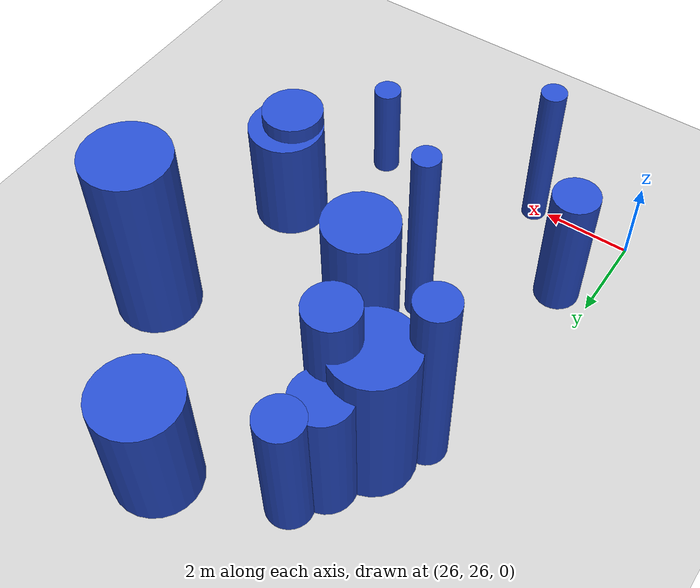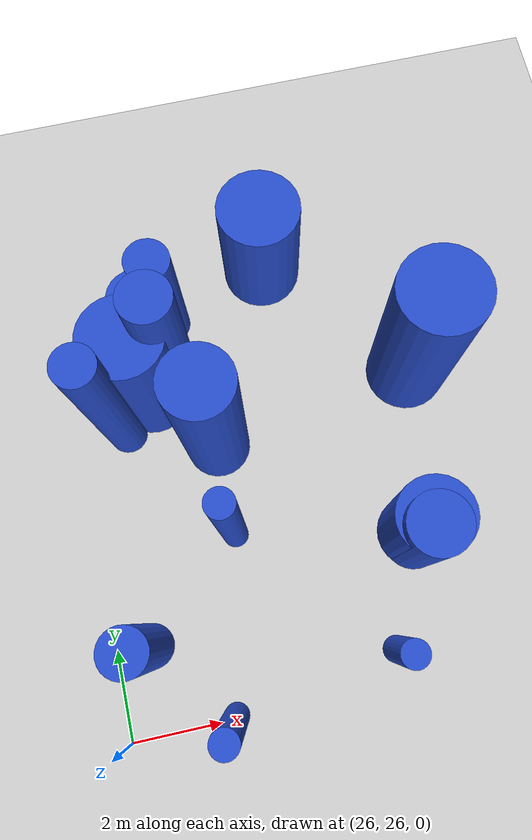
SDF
<sdf version="1.6">
 <world name="default">
  <model name="ground_plane">
   <static>1</static>
   <link name="link">
    <collision name="collision">
     <geometry><plane><normal>0 0 1</normal><size>100 100</size></plane></geometry>
     <surface><friction><ode><mu>100</mu><mu2>50</mu2></ode></friction></surface>
    </collision>
    <visual name="visual">
     <cast_shadows>0</cast_shadows>
     <geometry><plane><normal>0 0 1</normal><size>100 100</size></plane></geometry>
     <material>
      <script><uri>file://media/materials/scripts/gazebo.material</uri><name>Gazebo/Grey</name></script>
     </material>
    </visual>
   </link>
  </model>
  <model name="16">
   <static>0</static>
   <link name="link">
    <inertial>
     <mass>2</mass>
     <inertia><ixx>1.94796</ixx><ixy>0</ixy><ixz>0</ixz><iyy>1.94796</iyy><iyz>0</iyz><izz>0.38834</izz></inertia>
    </inertial>
    <collision name="collision">
     <geometry><cylinder><length>3.24388</length><radius>0.623169</radius></cylinder></geometry>
     <surface><contact><collide_without_contact>1</collide_without_contact></contact></surface>
    </collision>
    <visual name="visual">
     <geometry><cylinder><length>3.24388</length><radius>0.623169</radius></cylinder></geometry>
     <material>
      <script><uri>file://media/materials/scripts/gazebo.material</uri><name>Gazebo/Blue</name></script>
     </material>
    </visual>
    <gravity>0</gravity>
   </link>
   <pose>28.2373 34.7081 1.62194 0 -0 0</pose>
  </model>
  <model name="21">
   <static>0</static>
   <link name="link">
    <inertial>
     <mass>2</mass>
     <inertia><ixx>4.07181</ixx><ixy>0</ixy><ixz>0</ixz><iyy>4.07181</iyy><iyz>0</iyz><izz>0.543778</izz></inertia>
    </inertial>
    <collision name="collision">
     <geometry><cylinder><length>4.77488</length><radius>0.737413</radius></cylinder></geometry>
     <surface><contact><collide_without_contact>1</collide_without_contact></contact></surface>
    </collision>
    <visual name="visual">
     <geometry><cylinder><length>4.77488</length><radius>0.737413</radius></cylinder></geometry>
     <material>
      <script><uri>file://media/materials/scripts/gazebo.material</uri><name>Gazebo/Blue</name></script>
     </material>
    </visual>
    <gravity>0</gravity>
   </link>
   <pose>29.1484 32.1402 2.38744 0 -0 0</pose>
  </model>
  <model name="44">
   <static>0</static>
   <link name="link">
    <inertial>
     <mass>2</mass>
     <inertia><ixx>1.7448</ixx><ixy>0</ixy><ixz>0</ixz><iyy>1.7448</iyy><iyz>0</iyz><izz>0.25816</izz></inertia>
    </inertial>
    <collision name="collision">
     <geometry><cylinder><length>3.11357</length><radius>0.508094</radius></cylinder></geometry>
     <surface><contact><collide_without_contact>1</collide_without_contact></contact></surface>
    </collision>
    <visual name="visual">
     <geometry><cylinder><length>3.11357</length><radius>0.508094</radius></cylinder></geometry>
     <material>
      <script><uri>file://media/materials/scripts/gazebo.material</uri><name>Gazebo/Blue</name></script>
     </material>
    </visual>
    <gravity>0</gravity>
   </link>
   <pose>26.7685 27.9284 1.55679 0 -0 0</pose>
  </model>
  <model name="58">
   <static>0</static>
   <link name="link">
    <inertial>
     <mass>2</mass>
     <inertia><ixx>2.80734</ixx><ixy>0</ixy><ixz>0</ixz><iyy>2.80734</iyy><iyz>0</iyz><izz>0.790535</izz></inertia>
    </inertial>
    <collision name="collision">
     <geometry><cylinder><length>3.80426</length><radius>0.889121</radius></cylinder></geometry>
     <surface><contact><collide_without_contact>1</collide_without_contact></contact></surface>
    </collision>
    <visual name="visual">
     <geometry><cylinder><length>3.80426</length><radius>0.889121</radius></cylinder></geometry>
     <material>
      <script><uri>file://media/materials/scripts/gazebo.material</uri><name>Gazebo/Blue</name></script>
     </material>
    </visual>
    <gravity>0</gravity>
   </link>
   <pose>27.8441 33.6819 1.90213 0 -0 0</pose>
  </model>
  <model name="78">
   <static>0</static>
   <link name="link">
    <inertial>
     <mass>2</mass>
     <inertia><ixx>3.89358</ixx><ixy>0</ixy><ixz>0</ixz><iyy>3.89358</iyy><iyz>0</iyz><izz>0.194985</izz></inertia>
    </inertial>
    <collision name="collision">
     <geometry><cylinder><length>4.77247</length><radius>0.441571</radius></cylinder></geometry>
     <surface><contact><collide_without_contact>1</collide_without_contact></contact></surface>
    </collision>
    <visual name="visual">
     <geometry><cylinder><length>4.77247</length><radius>0.441571</radius></cylinder></geometry>
     <material>
      <script><uri>file://media/materials/scripts/gazebo.material</uri><name>Gazebo/Blue</name></script>
     </material>
    </visual>
    <gravity>0</gravity>
   </link>
   <pose>27.1001 32.8841 2.38624 0 -0 0</pose>
  </model>
  <model name="91">
   <static>0</static>
   <link name="link">
    <inertial>
     <mass>2</mass>
     <inertia><ixx>1.88416</ixx><ixy>0</ixy><ixz>0</ixz><iyy>1.88416</iyy><iyz>0</iyz><izz>0.248682</izz></inertia>
    </inertial>
    <collision name="collision">
     <geometry><cylinder><length>3.24945</length><radius>0.498681</radius></cylinder></geometry>
     <surface><contact><collide_without_contact>1</collide_without_contact></contact></surface>
    </collision>
    <visual name="visual">
     <geometry><cylinder><length>3.24945</length><radius>0.498681</radius></cylinder></geometry>
     <material>
      <script><uri>file://media/materials/scripts/gazebo.material</uri><name>Gazebo/Blue</name></script>
     </material>
    </visual>
    <gravity>0</gravity>
   </link>
   <pose>28.5794 35.4647 1.62472 0 -0 0</pose>
  </model>
  <model name="103">
   <static>0</static>
   <link name="link">
    <inertial>
     <mass>2</mass>
     <inertia><ixx>3.8726</ixx><ixy>0</ixy><ixz>0</ixz><iyy>3.8726</iyy><iyz>0</iyz><izz>0.29541</izz></inertia>
    </inertial>
    <collision name="collision">
     <geometry><cylinder><length>4.72751</length><radius>0.543517</radius></cylinder></geometry>
     <surface><contact><collide_without_contact>1</collide_without_contact></contact></surface>
    </collision>
    <visual name="visual">
     <geometry><cylinder><length>4.72751</length><radius>0.543517</radius></cylinder></geometry>
     <material>
      <script><uri>file://media/materials/scripts/gazebo.material</uri><name>Gazebo/Blue</name></script>
     </material>
    </visual>
    <gravity>0</gravity>
   </link>
   <pose>28.5316 33.9189 2.36376 0 -0 0</pose>
  </model>
  <model name="133">
   <static>0</static>
   <link name="link">
    <inertial>
     <mass>2</mass>
     <inertia><ixx>1.49924</ixx><ixy>0</ixy><ixz>0</ixz><iyy>1.49924</iyy><iyz>0</iyz><izz>0.70664</izz></inertia>
    </inertial>
    <collision name="collision">
     <geometry><cylinder><length>2.62212</length><radius>0.840619</radius></cylinder></geometry>
     <surface><contact><collide_without_contact>1</collide_without_contact></contact></surface>
    </collision>
    <visual name="visual">
     <geometry><cylinder><length>2.62212</length><radius>0.840619</radius></cylinder></geometry>
     <material>
      <script><uri>file://media/materials/scripts/gazebo.material</uri><name>Gazebo/Blue</name></script>
     </material>
    </visual>
    <gravity>0</gravity>
   </link>
   <pose>33.1535 29.158 1.31106 0 -0 0</pose>
  </model>
  <model name="135">
   <static>0</static>
   <link name="link">
    <inertial>
     <mass>2</mass>
     <inertia>
      <ixx>0.964582</ixx>
      <ixy>0</ixy>
      <ixz>0</ixz>
      <iyy>0.964582</iyy>
      <iyz>0</iyz>
      <izz>0.0928418</izz>
     </inertia>
    </inertial>
    <collision name="collision">
     <geometry><cylinder><length>2.34712</length><radius>0.304699</radius></cylinder></geometry>
     <surface><contact><collide_without_contact>1</collide_without_contact></contact></surface>
    </collision>
    <visual name="visual">
     <geometry><cylinder><length>2.34712</length><radius>0.304699</radius></cylinder></geometry>
     <material>
      <script><uri>file://media/materials/scripts/gazebo.material</uri><name>Gazebo/Blue</name></script>
     </material>
    </visual>
    <gravity>0</gravity>
   </link>
   <pose>32.105 26.6815 1.17356 0 -0 0</pose>
  </model>
  <model name="162">
   <static>0</static>
   <link name="link">
    <inertial>
     <mass>2</mass>
     <inertia><ixx>1.81525</ixx><ixy>0</ixy><ixz>0</ixz><iyy>1.81525</iyy><iyz>0</iyz><izz>0.856891</izz></inertia>
    </inertial>
    <collision name="collision">
     <geometry><cylinder><length>2.88458</length><radius>0.925684</radius></cylinder></geometry>
     <surface><contact><collide_without_contact>1</collide_without_contact></contact></surface>
    </collision>
    <visual name="visual">
     <geometry><cylinder><length>2.88458</length><radius>0.925684</radius></cylinder></geometry>
     <material>
      <script><uri>file://media/materials/scripts/gazebo.material</uri><name>Gazebo/Blue</name></script>
     </material>
    </visual>
    <gravity>0</gravity>
   </link>
   <pose>31.1056 36.3687 1.44229 0 -0 0</pose>
  </model>
  <model name="192">
   <static>0</static>
   <link name="link">
    <inertial>
     <mass>2</mass>
     <inertia><ixx>2.07774</ixx><ixy>0</ixy><ixz>0</ixz><iyy>2.07774</iyy><iyz>0</iyz><izz>0.131573</izz></inertia>
    </inertial>
    <collision name="collision">
     <geometry><cylinder><length>3.47444</length><radius>0.36273</radius></cylinder></geometry>
     <surface><contact><collide_without_contact>1</collide_without_contact></contact></surface>
    </collision>
    <visual name="visual">
     <geometry><cylinder><length>3.47444</length><radius>0.36273</radius></cylinder></geometry>
     <material>
      <script><uri>file://media/materials/scripts/gazebo.material</uri><name>Gazebo/Blue</name></script>
     </material>
    </visual>
    <gravity>0</gravity>
   </link>
   <pose>34.6264 33.0363 1.73722 0 -0 0</pose>
  </model>
  <model name="221">
   <static>0</static>
   <link name="link">
    <inertial>
     <mass>2</mass>
     <inertia>
      <ixx>3.59833</ixx>
      <ixy>0</ixy>
      <ixz>0</ixz>
      <iyy>3.59833</iyy>
      <iyz>0</iyz>
      <izz>0.0862333</izz>
     </inertia>
    </inertial>
    <collision name="collision">
     <geometry><cylinder><length>4.61858</length><radius>0.293655</radius></cylinder></geometry>
     <surface><contact><collide_without_contact>1</collide_without_contact></contact></surface>
    </collision>
    <visual name="visual">
     <geometry><cylinder><length>4.61858</length><radius>0.293655</radius></cylinder></geometry>
     <material>
      <script><uri>file://media/materials/scripts/gazebo.material</uri><name>Gazebo/Blue</name></script>
     </material>
    </visual>
    <gravity>0</gravity>
   </link>
   <pose>29.1156 29.9785 2.30929 0 -0 0</pose>
  </model>
  <model name="222">
   <static>0</static>
   <link name="link">
    <inertial>
     <mass>2</mass>
     <inertia><ixx>3.75545</ixx><ixy>0</ixy><ixz>0</ixz><iyy>3.75545</iyy><iyz>0</iyz><izz>0.888662</izz></inertia>
    </inertial>
    <collision name="collision">
     <geometry><cylinder><length>4.45721</length><radius>0.942689</radius></cylinder></geometry>
     <surface><contact><collide_without_contact>1</collide_without_contact></contact></surface>
    </collision>
    <visual name="visual">
     <geometry><cylinder><length>4.45721</length><radius>0.942689</radius></cylinder></geometry>
     <material>
      <script><uri>file://media/materials/scripts/gazebo.material</uri><name>Gazebo/Blue</name></script>
     </material>
    </visual>
    <gravity>0</gravity>
   </link>
   <pose>33.9636 33.0053 2.2286 0 -0 0</pose>
  </model>
  <model name="225">
   <static>0</static>
   <link name="link">
    <inertial>
     <mass>2</mass>
     <inertia><ixx>1.70553</ixx><ixy>0</ixy><ixz>0</ixz><iyy>1.70553</iyy><iyz>0</iyz><izz>0.458837</izz></inertia>
    </inertial>
    <collision name="collision">
     <geometry><cylinder><length>2.97602</length><radius>0.677375</radius></cylinder></geometry>
     <surface><contact><collide_without_contact>1</collide_without_contact></contact></surface>
    </collision>
    <visual name="visual">
     <geometry><cylinder><length>2.97602</length><radius>0.677375</radius></cylinder></geometry>
     <material>
      <script><uri>file://media/materials/scripts/gazebo.material</uri><name>Gazebo/Blue</name></script>
     </material>
    </visual>
    <gravity>0</gravity>
   </link>
   <pose>33.0921 28.9664 1.48801 0 -0 0</pose>
  </model>
  <model name="246">
   <static>0</static>
   <link name="link">
    <inertial>
     <mass>2</mass>
     <inertia>
      <ixx>2.30914</ixx>
      <ixy>0</ixy>
      <ixz>0</ixz>
      <iyy>2.30914</iyy>
      <iyz>0</iyz>
      <izz>0.0802762</izz>
     </inertia>
    </inertial>
    <collision name="collision">
     <geometry><cylinder><length>3.68972</length><radius>0.283331</radius></cylinder></geometry>
     <surface><contact><collide_without_contact>1</collide_without_contact></contact></surface>
    </collision>
    <visual name="visual">
     <geometry><cylinder><length>3.68972</length><radius>0.283331</radius></cylinder></geometry>
     <material>
      <script><uri>file://media/materials/scripts/gazebo.material</uri><name>Gazebo/Blue</name></script>
     </material>
    </visual>
    <gravity>0</gravity>
   </link>
   <pose>28.3359 26.0785 1.84486 0 -0 0</pose>
  </model>
 </world>
</sdf>
